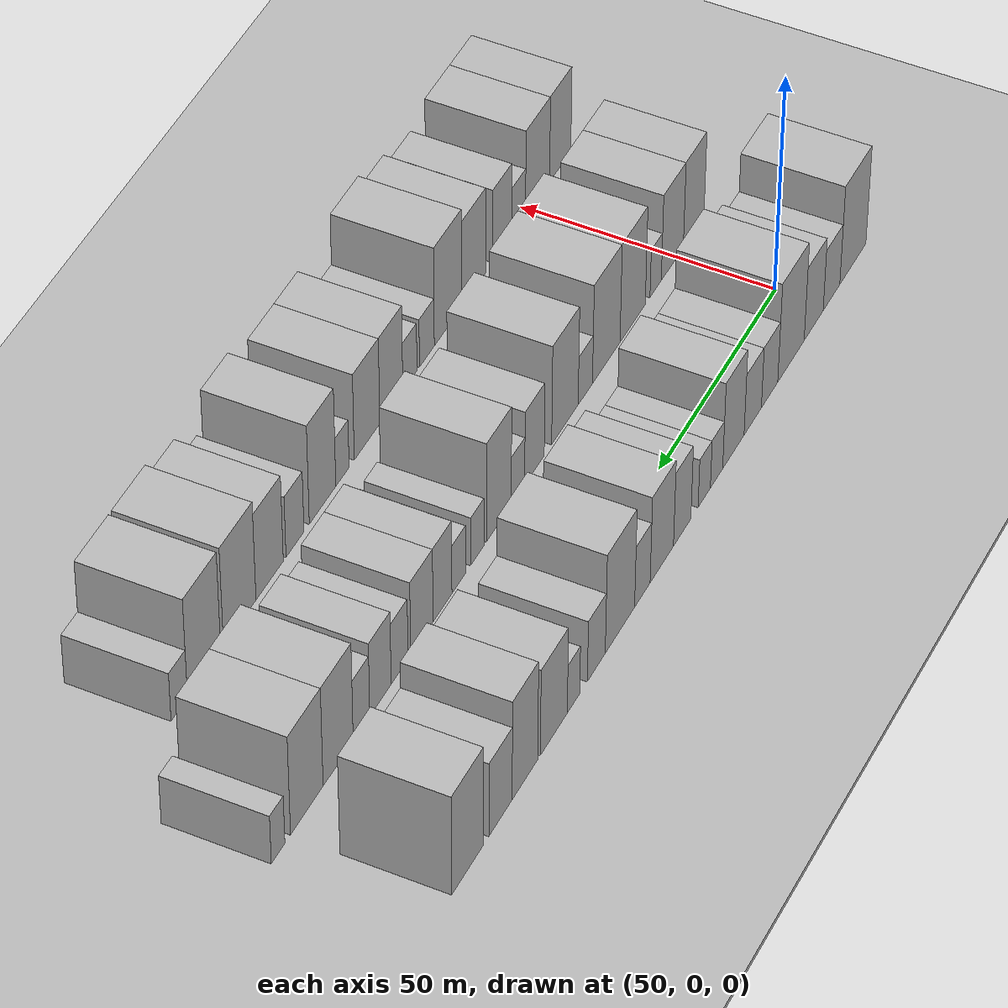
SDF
<sdf version="1.6">
 <world name="default">
  <include><name>ground_plane_1</name><uri>model://HANNAS_ground_plane</uri></include>
  <include>
   <name>ground_plane_2</name>
   <uri>model://HANNAS_ground_plane</uri>
   <pose>100 0 0  0 0 0</pose>
  </include>
  <model name="building_36">
   <static>1</static>
   <pose>50.0000 -11.4566 0 0.000000 0.000000 0.000000</pose>
   <link name="link">
    <pose>0 0 12.00 0 0 0</pose>
    <collision name="collision"><geometry><box><size>20.0000 11.8743 24.0000</size></box></geometry></collision>
    <visual name="visual">
     <cast_shadows>0</cast_shadows>
     <geometry><box><size>20.0000 11.8743 24.0000</size></box></geometry>
     <material>
      <script>
       <uri>model://HANNAS_wall/materials/scripts</uri>
       <uri>model://HANNAS_wall/materials/textures</uri>
       <name>vrc/HANNAS_wall</name>
      </script>
     </material>
    </visual>
   </link>
  </model>
  <model name="building_37">
   <static>1</static>
   <pose>50.0000 -1.7803 0 0.000000 0.000000 0.000000</pose>
   <link name="link">
    <pose>0 0 7.50 0 0 0</pose>
    <collision name="collision"><geometry><box><size>20.0000 7.4783 15.0000</size></box></geometry></collision>
    <visual name="visual">
     <cast_shadows>0</cast_shadows>
     <geometry><box><size>20.0000 7.4783 15.0000</size></box></geometry>
     <material>
      <script>
       <uri>model://HANNAS_wall/materials/scripts</uri>
       <uri>model://HANNAS_wall/materials/textures</uri>
       <name>vrc/HANNAS_wall</name>
      </script>
     </material>
    </visual>
   </link>
  </model>
  <model name="building_38">
   <static>1</static>
   <pose>50.0000 6.1895 0 0.000000 0.000000 0.000000</pose>
   <link name="link">
    <pose>0 0 9.00 0 0 0</pose>
    <collision name="collision"><geometry><box><size>20.0000 8.4613 18.0000</size></box></geometry></collision>
    <visual name="visual">
     <cast_shadows>0</cast_shadows>
     <geometry><box><size>20.0000 8.4613 18.0000</size></box></geometry>
     <material>
      <script>
       <uri>model://HANNAS_wall/materials/scripts</uri>
       <uri>model://HANNAS_wall/materials/textures</uri>
       <name>vrc/HANNAS_wall</name>
      </script>
     </material>
    </visual>
   </link>
  </model>
  <model name="building_39">
   <static>1</static>
   <pose>50.0000 16.2375 0 0.000000 0.000000 0.000000</pose>
   <link name="link">
    <pose>0 0 12.00 0 0 0</pose>
    <collision name="collision"><geometry><box><size>20.0000 11.6348 24.0000</size></box></geometry></collision>
    <visual name="visual">
     <cast_shadows>0</cast_shadows>
     <geometry><box><size>20.0000 11.6348 24.0000</size></box></geometry>
     <material>
      <script>
       <uri>model://HANNAS_wall/materials/scripts</uri>
       <uri>model://HANNAS_wall/materials/textures</uri>
       <name>vrc/HANNAS_wall</name>
      </script>
     </material>
    </visual>
   </link>
  </model>
  <model name="building_40">
   <static>1</static>
   <pose>50.0000 25.6012 0 0.000000 0.000000 0.000000</pose>
   <link name="link">
    <pose>0 0 7.50 0 0 0</pose>
    <collision name="collision"><geometry><box><size>20.0000 7.0926 15.0000</size></box></geometry></collision>
    <visual name="visual">
     <cast_shadows>0</cast_shadows>
     <geometry><box><size>20.0000 7.0926 15.0000</size></box></geometry>
     <material>
      <script>
       <uri>model://HANNAS_wall/materials/scripts</uri>
       <uri>model://HANNAS_wall/materials/textures</uri>
       <name>vrc/HANNAS_wall</name>
      </script>
     </material>
    </visual>
   </link>
  </model>
  <model name="building_41">
   <static>1</static>
   <pose>50.0000 32.8756 0 0.000000 0.000000 0.000000</pose>
   <link name="link">
    <pose>0 0 7.50 0 0 0</pose>
    <collision name="collision"><geometry><box><size>20.0000 7.4560 15.0000</size></box></geometry></collision>
    <visual name="visual">
     <cast_shadows>0</cast_shadows>
     <geometry><box><size>20.0000 7.4560 15.0000</size></box></geometry>
     <material>
      <script>
       <uri>model://HANNAS_wall/materials/scripts</uri>
       <uri>model://HANNAS_wall/materials/textures</uri>
       <name>vrc/HANNAS_wall</name>
      </script>
     </material>
    </visual>
   </link>
  </model>
  <model name="building_42">
   <static>1</static>
   <pose>50.0000 41.1588 0 0.000000 0.000000 0.000000</pose>
   <link name="link">
    <pose>0 0 10.50 0 0 0</pose>
    <collision name="collision"><geometry><box><size>20.0000 9.1105 21.0000</size></box></geometry></collision>
    <visual name="visual">
     <cast_shadows>0</cast_shadows>
     <geometry><box><size>20.0000 9.1105 21.0000</size></box></geometry>
     <material>
      <script>
       <uri>model://HANNAS_wall/materials/scripts</uri>
       <uri>model://HANNAS_wall/materials/textures</uri>
       <name>vrc/HANNAS_wall</name>
      </script>
     </material>
    </visual>
   </link>
  </model>
  <model name="building_43">
   <static>1</static>
   <pose>50.0000 48.3113 0 0.000000 0.000000 0.000000</pose>
   <link name="link">
    <pose>0 0 6.00 0 0 0</pose>
    <collision name="collision"><geometry><box><size>20.0000 5.1945 12.0000</size></box></geometry></collision>
    <visual name="visual">
     <cast_shadows>0</cast_shadows>
     <geometry><box><size>20.0000 5.1945 12.0000</size></box></geometry>
     <material>
      <script>
       <uri>model://HANNAS_wall/materials/scripts</uri>
       <uri>model://HANNAS_wall/materials/textures</uri>
       <name>vrc/HANNAS_wall</name>
      </script>
     </material>
    </visual>
   </link>
  </model>
  <model name="building_44">
   <static>1</static>
   <pose>50.0000 53.4789 0 0.000000 0.000000 0.000000</pose>
   <link name="link">
    <pose>0 0 6.00 0 0 0</pose>
    <collision name="collision"><geometry><box><size>20.0000 5.1407 12.0000</size></box></geometry></collision>
    <visual name="visual">
     <cast_shadows>0</cast_shadows>
     <geometry><box><size>20.0000 5.1407 12.0000</size></box></geometry>
     <material>
      <script>
       <uri>model://HANNAS_wall/materials/scripts</uri>
       <uri>model://HANNAS_wall/materials/textures</uri>
       <name>vrc/HANNAS_wall</name>
      </script>
     </material>
    </visual>
   </link>
  </model>
  <model name="building_45">
   <static>1</static>
   <pose>50.0000 62.6525 0 0.000000 0.000000 0.000000</pose>
   <link name="link">
    <pose>0 0 9.00 0 0 0</pose>
    <collision name="collision"><geometry><box><size>20.0000 7.2066 18.0000</size></box></geometry></collision>
    <visual name="visual">
     <cast_shadows>0</cast_shadows>
     <geometry><box><size>20.0000 7.2066 18.0000</size></box></geometry>
     <material>
      <script>
       <uri>model://HANNAS_wall/materials/scripts</uri>
       <uri>model://HANNAS_wall/materials/textures</uri>
       <name>vrc/HANNAS_wall</name>
      </script>
     </material>
    </visual>
   </link>
  </model>
  <model name="building_46">
   <static>1</static>
   <pose>50.0000 71.0401 0 0.000000 0.000000 0.000000</pose>
   <link name="link">
    <pose>0 0 10.50 0 0 0</pose>
    <collision name="collision"><geometry><box><size>20.0000 9.5687 21.0000</size></box></geometry></collision>
    <visual name="visual">
     <cast_shadows>0</cast_shadows>
     <geometry><box><size>20.0000 9.5687 21.0000</size></box></geometry>
     <material>
      <script>
       <uri>model://HANNAS_wall/materials/scripts</uri>
       <uri>model://HANNAS_wall/materials/textures</uri>
       <name>vrc/HANNAS_wall</name>
      </script>
     </material>
    </visual>
   </link>
  </model>
  <model name="building_47">
   <static>1</static>
   <pose>50.0000 78.9659 0 0.000000 0.000000 0.000000</pose>
   <link name="link">
    <pose>0 0 7.50 0 0 0</pose>
    <collision name="collision"><geometry><box><size>20.0000 6.2827 15.0000</size></box></geometry></collision>
    <visual name="visual">
     <cast_shadows>0</cast_shadows>
     <geometry><box><size>20.0000 6.2827 15.0000</size></box></geometry>
     <material>
      <script>
       <uri>model://HANNAS_wall/materials/scripts</uri>
       <uri>model://HANNAS_wall/materials/textures</uri>
       <name>vrc/HANNAS_wall</name>
      </script>
     </material>
    </visual>
   </link>
  </model>
  <model name="building_48">
   <static>1</static>
   <pose>50.0000 87.9736 0 0.000000 0.000000 0.000000</pose>
   <link name="link">
    <pose>0 0 12.00 0 0 0</pose>
    <collision name="collision"><geometry><box><size>20.0000 11.7327 24.0000</size></box></geometry></collision>
    <visual name="visual">
     <cast_shadows>0</cast_shadows>
     <geometry><box><size>20.0000 11.7327 24.0000</size></box></geometry>
     <material>
      <script>
       <uri>model://HANNAS_wall/materials/scripts</uri>
       <uri>model://HANNAS_wall/materials/textures</uri>
       <name>vrc/HANNAS_wall</name>
      </script>
     </material>
    </visual>
   </link>
  </model>
  <model name="building_49">
   <static>1</static>
   <pose>50.0000 97.3768 0 0.000000 0.000000 0.000000</pose>
   <link name="link">
    <pose>0 0 7.50 0 0 0</pose>
    <collision name="collision"><geometry><box><size>20.0000 7.0737 15.0000</size></box></geometry></collision>
    <visual name="visual">
     <cast_shadows>0</cast_shadows>
     <geometry><box><size>20.0000 7.0737 15.0000</size></box></geometry>
     <material>
      <script>
       <uri>model://HANNAS_wall/materials/scripts</uri>
       <uri>model://HANNAS_wall/materials/textures</uri>
       <name>vrc/HANNAS_wall</name>
      </script>
     </material>
    </visual>
   </link>
  </model>
  <model name="building_50">
   <static>1</static>
   <pose>50.0000 106.3409 0 0.000000 0.000000 0.000000</pose>
   <link name="link">
    <pose>0 0 6.00 0 0 0</pose>
    <collision name="collision"><geometry><box><size>20.0000 4.8545 12.0000</size></box></geometry></collision>
    <visual name="visual">
     <cast_shadows>0</cast_shadows>
     <geometry><box><size>20.0000 4.8545 12.0000</size></box></geometry>
     <material>
      <script>
       <uri>model://HANNAS_wall/materials/scripts</uri>
       <uri>model://HANNAS_wall/materials/textures</uri>
       <name>vrc/HANNAS_wall</name>
      </script>
     </material>
    </visual>
   </link>
  </model>
  <model name="building_51">
   <static>1</static>
   <pose>50.0000 113.9751 0 0.000000 0.000000 0.000000</pose>
   <link name="link">
    <pose>0 0 10.50 0 0 0</pose>
    <collision name="collision"><geometry><box><size>20.0000 10.4141 21.0000</size></box></geometry></collision>
    <visual name="visual">
     <cast_shadows>0</cast_shadows>
     <geometry><box><size>20.0000 10.4141 21.0000</size></box></geometry>
     <material>
      <script>
       <uri>model://HANNAS_wall/materials/scripts</uri>
       <uri>model://HANNAS_wall/materials/textures</uri>
       <name>vrc/HANNAS_wall</name>
      </script>
     </material>
    </visual>
   </link>
  </model>
  <model name="building_52">
   <static>1</static>
   <pose>50.0000 125.0453 0 0.000000 0.000000 0.000000</pose>
   <link name="link">
    <pose>0 0 12.00 0 0 0</pose>
    <collision name="collision"><geometry><box><size>20.0000 9.7262 24.0000</size></box></geometry></collision>
    <visual name="visual">
     <cast_shadows>0</cast_shadows>
     <geometry><box><size>20.0000 9.7262 24.0000</size></box></geometry>
     <material>
      <script>
       <uri>model://HANNAS_wall/materials/scripts</uri>
       <uri>model://HANNAS_wall/materials/textures</uri>
       <name>vrc/HANNAS_wall</name>
      </script>
     </material>
    </visual>
   </link>
  </model>
  <model name="building_53">
   <static>1</static>
   <pose>50.0000 134.2618 0 0.000000 0.000000 0.000000</pose>
   <link name="link">
    <pose>0 0 9.00 0 0 0</pose>
    <collision name="collision"><geometry><box><size>20.0000 8.7068 18.0000</size></box></geometry></collision>
    <visual name="visual">
     <cast_shadows>0</cast_shadows>
     <geometry><box><size>20.0000 8.7068 18.0000</size></box></geometry>
     <material>
      <script>
       <uri>model://HANNAS_wall/materials/scripts</uri>
       <uri>model://HANNAS_wall/materials/textures</uri>
       <name>vrc/HANNAS_wall</name>
      </script>
     </material>
    </visual>
   </link>
  </model>
  <model name="building_54">
   <static>1</static>
   <pose>50.0000 146.4818 0 0.000000 0.000000 0.000000</pose>
   <link name="link">
    <pose>0 0 12.00 0 0 0</pose>
    <collision name="collision"><geometry><box><size>20.0000 11.7331 24.0000</size></box></geometry></collision>
    <visual name="visual">
     <cast_shadows>0</cast_shadows>
     <geometry><box><size>20.0000 11.7331 24.0000</size></box></geometry>
     <material>
      <script>
       <uri>model://HANNAS_wall/materials/scripts</uri>
       <uri>model://HANNAS_wall/materials/textures</uri>
       <name>vrc/HANNAS_wall</name>
      </script>
     </material>
    </visual>
   </link>
  </model>
  <model name="building_113">
   <static>1</static>
   <pose>79.0000 -6.7796 0 0.000000 0.000000 0.000000</pose>
   <link name="link">
    <pose>0 0 10.50 0 0 0</pose>
    <collision name="collision"><geometry><box><size>20.0000 9.0145 21.0000</size></box></geometry></collision>
    <visual name="visual">
     <cast_shadows>0</cast_shadows>
     <geometry><box><size>20.0000 9.0145 21.0000</size></box></geometry>
     <material>
      <script>
       <uri>model://HANNAS_wall/materials/scripts</uri>
       <uri>model://HANNAS_wall/materials/textures</uri>
       <name>vrc/HANNAS_wall</name>
      </script>
     </material>
    </visual>
   </link>
  </model>
  <model name="building_114">
   <static>1</static>
   <pose>79.0000 2.4978 0 0.000000 0.000000 0.000000</pose>
   <link name="link">
    <pose>0 0 10.50 0 0 0</pose>
    <collision name="collision"><geometry><box><size>20.0000 9.5403 21.0000</size></box></geometry></collision>
    <visual name="visual">
     <cast_shadows>0</cast_shadows>
     <geometry><box><size>20.0000 9.5403 21.0000</size></box></geometry>
     <material>
      <script>
       <uri>model://HANNAS_wall/materials/scripts</uri>
       <uri>model://HANNAS_wall/materials/textures</uri>
       <name>vrc/HANNAS_wall</name>
      </script>
     </material>
    </visual>
   </link>
  </model>
  <model name="building_115">
   <static>1</static>
   <pose>79.0000 9.6954 0 0.000000 0.000000 0.000000</pose>
   <link name="link">
    <pose>0 0 6.00 0 0 0</pose>
    <collision name="collision"><geometry><box><size>20.0000 4.8549 12.0000</size></box></geometry></collision>
    <visual name="visual">
     <cast_shadows>0</cast_shadows>
     <geometry><box><size>20.0000 4.8549 12.0000</size></box></geometry>
     <material>
      <script>
       <uri>model://HANNAS_wall/materials/scripts</uri>
       <uri>model://HANNAS_wall/materials/textures</uri>
       <name>vrc/HANNAS_wall</name>
      </script>
     </material>
    </visual>
   </link>
  </model>
  <model name="building_116">
   <static>1</static>
   <pose>79.0000 19.4816 0 0.000000 0.000000 0.000000</pose>
   <link name="link">
    <pose>0 0 12.00 0 0 0</pose>
    <collision name="collision"><geometry><box><size>20.0000 10.7175 24.0000</size></box></geometry></collision>
    <visual name="visual">
     <cast_shadows>0</cast_shadows>
     <geometry><box><size>20.0000 10.7175 24.0000</size></box></geometry>
     <material>
      <script>
       <uri>model://HANNAS_wall/materials/scripts</uri>
       <uri>model://HANNAS_wall/materials/textures</uri>
       <name>vrc/HANNAS_wall</name>
      </script>
     </material>
    </visual>
   </link>
  </model>
  <model name="building_117">
   <static>1</static>
   <pose>79.0000 30.5939 0 0.000000 0.000000 0.000000</pose>
   <link name="link">
    <pose>0 0 12.00 0 0 0</pose>
    <collision name="collision"><geometry><box><size>20.0000 11.5070 24.0000</size></box></geometry></collision>
    <visual name="visual">
     <cast_shadows>0</cast_shadows>
     <geometry><box><size>20.0000 11.5070 24.0000</size></box></geometry>
     <material>
      <script>
       <uri>model://HANNAS_wall/materials/scripts</uri>
       <uri>model://HANNAS_wall/materials/textures</uri>
       <name>vrc/HANNAS_wall</name>
      </script>
     </material>
    </visual>
   </link>
  </model>
  <model name="building_118">
   <static>1</static>
   <pose>79.0000 39.3029 0 0.000000 0.000000 0.000000</pose>
   <link name="link">
    <pose>0 0 6.00 0 0 0</pose>
    <collision name="collision"><geometry><box><size>20.0000 5.9110 12.0000</size></box></geometry></collision>
    <visual name="visual">
     <cast_shadows>0</cast_shadows>
     <geometry><box><size>20.0000 5.9110 12.0000</size></box></geometry>
     <material>
      <script>
       <uri>model://HANNAS_wall/materials/scripts</uri>
       <uri>model://HANNAS_wall/materials/textures</uri>
       <name>vrc/HANNAS_wall</name>
      </script>
     </material>
    </visual>
   </link>
  </model>
  <model name="building_119">
   <static>1</static>
   <pose>79.0000 47.6782 0 0.000000 0.000000 0.000000</pose>
   <link name="link">
    <pose>0 0 12.00 0 0 0</pose>
    <collision name="collision"><geometry><box><size>20.0000 10.8397 24.0000</size></box></geometry></collision>
    <visual name="visual">
     <cast_shadows>0</cast_shadows>
     <geometry><box><size>20.0000 10.8397 24.0000</size></box></geometry>
     <material>
      <script>
       <uri>model://HANNAS_wall/materials/scripts</uri>
       <uri>model://HANNAS_wall/materials/textures</uri>
       <name>vrc/HANNAS_wall</name>
      </script>
     </material>
    </visual>
   </link>
  </model>
  <model name="building_120">
   <static>1</static>
   <pose>79.0000 60.0306 0 0.000000 0.000000 0.000000</pose>
   <link name="link">
    <pose>0 0 9.00 0 0 0</pose>
    <collision name="collision"><geometry><box><size>20.0000 7.8651 18.0000</size></box></geometry></collision>
    <visual name="visual">
     <cast_shadows>0</cast_shadows>
     <geometry><box><size>20.0000 7.8651 18.0000</size></box></geometry>
     <material>
      <script>
       <uri>model://HANNAS_wall/materials/scripts</uri>
       <uri>model://HANNAS_wall/materials/textures</uri>
       <name>vrc/HANNAS_wall</name>
      </script>
     </material>
    </visual>
   </link>
  </model>
  <model name="building_121">
   <static>1</static>
   <pose>79.0000 66.6410 0 0.000000 0.000000 0.000000</pose>
   <link name="link">
    <pose>0 0 6.00 0 0 0</pose>
    <collision name="collision"><geometry><box><size>20.0000 5.3556 12.0000</size></box></geometry></collision>
    <visual name="visual">
     <cast_shadows>0</cast_shadows>
     <geometry><box><size>20.0000 5.3556 12.0000</size></box></geometry>
     <material>
      <script>
       <uri>model://HANNAS_wall/materials/scripts</uri>
       <uri>model://HANNAS_wall/materials/textures</uri>
       <name>vrc/HANNAS_wall</name>
      </script>
     </material>
    </visual>
   </link>
  </model>
  <model name="building_122">
   <static>1</static>
   <pose>79.0000 74.1909 0 0.000000 0.000000 0.000000</pose>
   <link name="link">
    <pose>0 0 12.00 0 0 0</pose>
    <collision name="collision"><geometry><box><size>20.0000 9.7443 24.0000</size></box></geometry></collision>
    <visual name="visual">
     <cast_shadows>0</cast_shadows>
     <geometry><box><size>20.0000 9.7443 24.0000</size></box></geometry>
     <material>
      <script>
       <uri>model://HANNAS_wall/materials/scripts</uri>
       <uri>model://HANNAS_wall/materials/textures</uri>
       <name>vrc/HANNAS_wall</name>
      </script>
     </material>
    </visual>
   </link>
  </model>
  <model name="building_123">
   <static>1</static>
   <pose>79.0000 82.6340 0 0.000000 0.000000 0.000000</pose>
   <link name="link">
    <pose>0 0 6.00 0 0 0</pose>
    <collision name="collision"><geometry><box><size>20.0000 5.1418 12.0000</size></box></geometry></collision>
    <visual name="visual">
     <cast_shadows>0</cast_shadows>
     <geometry><box><size>20.0000 5.1418 12.0000</size></box></geometry>
     <material>
      <script>
       <uri>model://HANNAS_wall/materials/scripts</uri>
       <uri>model://HANNAS_wall/materials/textures</uri>
       <name>vrc/HANNAS_wall</name>
      </script>
     </material>
    </visual>
   </link>
  </model>
  <model name="building_124">
   <static>1</static>
   <pose>79.0000 89.8592 0 0.000000 0.000000 0.000000</pose>
   <link name="link">
    <pose>0 0 6.00 0 0 0</pose>
    <collision name="collision"><geometry><box><size>20.0000 5.3085 12.0000</size></box></geometry></collision>
    <visual name="visual">
     <cast_shadows>0</cast_shadows>
     <geometry><box><size>20.0000 5.3085 12.0000</size></box></geometry>
     <material>
      <script>
       <uri>model://HANNAS_wall/materials/scripts</uri>
       <uri>model://HANNAS_wall/materials/textures</uri>
       <name>vrc/HANNAS_wall</name>
      </script>
     </material>
    </visual>
   </link>
  </model>
  <model name="building_125">
   <static>1</static>
   <pose>79.0000 96.1387 0 0.000000 0.000000 0.000000</pose>
   <link name="link">
    <pose>0 0 9.00 0 0 0</pose>
    <collision name="collision"><geometry><box><size>20.0000 7.2506 18.0000</size></box></geometry></collision>
    <visual name="visual">
     <cast_shadows>0</cast_shadows>
     <geometry><box><size>20.0000 7.2506 18.0000</size></box></geometry>
     <material>
      <script>
       <uri>model://HANNAS_wall/materials/scripts</uri>
       <uri>model://HANNAS_wall/materials/textures</uri>
       <name>vrc/HANNAS_wall</name>
      </script>
     </material>
    </visual>
   </link>
  </model>
  <model name="building_126">
   <static>1</static>
   <pose>79.0000 104.0138 0 0.000000 0.000000 0.000000</pose>
   <link name="link">
    <pose>0 0 9.00 0 0 0</pose>
    <collision name="collision"><geometry><box><size>20.0000 8.4997 18.0000</size></box></geometry></collision>
    <visual name="visual">
     <cast_shadows>0</cast_shadows>
     <geometry><box><size>20.0000 8.4997 18.0000</size></box></geometry>
     <material>
      <script>
       <uri>model://HANNAS_wall/materials/scripts</uri>
       <uri>model://HANNAS_wall/materials/textures</uri>
       <name>vrc/HANNAS_wall</name>
      </script>
     </material>
    </visual>
   </link>
  </model>
  <model name="building_127">
   <static>1</static>
   <pose>79.0000 112.4171 0 0.000000 0.000000 0.000000</pose>
   <link name="link">
    <pose>0 0 7.50 0 0 0</pose>
    <collision name="collision"><geometry><box><size>20.0000 6.3067 15.0000</size></box></geometry></collision>
    <visual name="visual">
     <cast_shadows>0</cast_shadows>
     <geometry><box><size>20.0000 6.3067 15.0000</size></box></geometry>
     <material>
      <script>
       <uri>model://HANNAS_wall/materials/scripts</uri>
       <uri>model://HANNAS_wall/materials/textures</uri>
       <name>vrc/HANNAS_wall</name>
      </script>
     </material>
    </visual>
   </link>
  </model>
  <model name="building_128">
   <static>1</static>
   <pose>79.0000 119.5360 0 0.000000 0.000000 0.000000</pose>
   <link name="link">
    <pose>0 0 9.00 0 0 0</pose>
    <collision name="collision"><geometry><box><size>20.0000 7.9312 18.0000</size></box></geometry></collision>
    <visual name="visual">
     <cast_shadows>0</cast_shadows>
     <geometry><box><size>20.0000 7.9312 18.0000</size></box></geometry>
     <material>
      <script>
       <uri>model://HANNAS_wall/materials/scripts</uri>
       <uri>model://HANNAS_wall/materials/textures</uri>
       <name>vrc/HANNAS_wall</name>
      </script>
     </material>
    </visual>
   </link>
  </model>
  <model name="building_129">
   <static>1</static>
   <pose>79.0000 126.5521 0 0.000000 0.000000 0.000000</pose>
   <link name="link">
    <pose>0 0 7.50 0 0 0</pose>
    <collision name="collision"><geometry><box><size>20.0000 6.1010 15.0000</size></box></geometry></collision>
    <visual name="visual">
     <cast_shadows>0</cast_shadows>
     <geometry><box><size>20.0000 6.1010 15.0000</size></box></geometry>
     <material>
      <script>
       <uri>model://HANNAS_wall/materials/scripts</uri>
       <uri>model://HANNAS_wall/materials/textures</uri>
       <name>vrc/HANNAS_wall</name>
      </script>
     </material>
    </visual>
   </link>
  </model>
  <model name="building_130">
   <static>1</static>
   <pose>79.0000 135.0654 0 0.000000 0.000000 0.000000</pose>
   <link name="link">
    <pose>0 0 12.00 0 0 0</pose>
    <collision name="collision"><geometry><box><size>20.0000 10.9256 24.0000</size></box></geometry></collision>
    <visual name="visual">
     <cast_shadows>0</cast_shadows>
     <geometry><box><size>20.0000 10.9256 24.0000</size></box></geometry>
     <material>
      <script>
       <uri>model://HANNAS_wall/materials/scripts</uri>
       <uri>model://HANNAS_wall/materials/textures</uri>
       <name>vrc/HANNAS_wall</name>
      </script>
     </material>
    </visual>
   </link>
  </model>
  <model name="building_131">
   <static>1</static>
   <pose>79.0000 146.3629 0 0.000000 0.000000 0.000000</pose>
   <link name="link">
    <pose>0 0 12.00 0 0 0</pose>
    <collision name="collision"><geometry><box><size>20.0000 11.6694 24.0000</size></box></geometry></collision>
    <visual name="visual">
     <cast_shadows>0</cast_shadows>
     <geometry><box><size>20.0000 11.6694 24.0000</size></box></geometry>
     <material>
      <script>
       <uri>model://HANNAS_wall/materials/scripts</uri>
       <uri>model://HANNAS_wall/materials/textures</uri>
       <name>vrc/HANNAS_wall</name>
      </script>
     </material>
    </visual>
   </link>
  </model>
  <model name="building_132">
   <static>1</static>
   <pose>79.0000 156.5981 0 0.000000 0.000000 0.000000</pose>
   <link name="link">
    <pose>0 0 6.00 0 0 0</pose>
    <collision name="collision"><geometry><box><size>20.0000 4.8011 12.0000</size></box></geometry></collision>
    <visual name="visual">
     <cast_shadows>0</cast_shadows>
     <geometry><box><size>20.0000 4.8011 12.0000</size></box></geometry>
     <material>
      <script>
       <uri>model://HANNAS_wall/materials/scripts</uri>
       <uri>model://HANNAS_wall/materials/textures</uri>
       <name>vrc/HANNAS_wall</name>
      </script>
     </material>
    </visual>
   </link>
  </model>
  <model name="building_191">
   <static>1</static>
   <pose>108.0000 -12.3022 0 0.000000 0.000000 0.000000</pose>
   <link name="link">
    <pose>0 0 10.50 0 0 0</pose>
    <collision name="collision"><geometry><box><size>20.0000 9.0557 21.0000</size></box></geometry></collision>
    <visual name="visual">
     <cast_shadows>0</cast_shadows>
     <geometry><box><size>20.0000 9.0557 21.0000</size></box></geometry>
     <material>
      <script>
       <uri>model://HANNAS_wall/materials/scripts</uri>
       <uri>model://HANNAS_wall/materials/textures</uri>
       <name>vrc/HANNAS_wall</name>
      </script>
     </material>
    </visual>
   </link>
  </model>
  <model name="building_192">
   <static>1</static>
   <pose>108.0000 -2.6810 0 0.000000 0.000000 0.000000</pose>
   <link name="link">
    <pose>0 0 10.50 0 0 0</pose>
    <collision name="collision"><geometry><box><size>20.0000 10.1867 21.0000</size></box></geometry></collision>
    <visual name="visual">
     <cast_shadows>0</cast_shadows>
     <geometry><box><size>20.0000 10.1867 21.0000</size></box></geometry>
     <material>
      <script>
       <uri>model://HANNAS_wall/materials/scripts</uri>
       <uri>model://HANNAS_wall/materials/textures</uri>
       <name>vrc/HANNAS_wall</name>
      </script>
     </material>
    </visual>
   </link>
  </model>
  <model name="building_193">
   <static>1</static>
   <pose>108.0000 5.3242 0 0.000000 0.000000 0.000000</pose>
   <link name="link">
    <pose>0 0 6.00 0 0 0</pose>
    <collision name="collision"><geometry><box><size>20.0000 5.8237 12.0000</size></box></geometry></collision>
    <visual name="visual">
     <cast_shadows>0</cast_shadows>
     <geometry><box><size>20.0000 5.8237 12.0000</size></box></geometry>
     <material>
      <script>
       <uri>model://HANNAS_wall/materials/scripts</uri>
       <uri>model://HANNAS_wall/materials/textures</uri>
       <name>vrc/HANNAS_wall</name>
      </script>
     </material>
    </visual>
   </link>
  </model>
  <model name="building_194">
   <static>1</static>
   <pose>108.0000 12.1170 0 0.000000 0.000000 0.000000</pose>
   <link name="link">
    <pose>0 0 9.00 0 0 0</pose>
    <collision name="collision"><geometry><box><size>20.0000 7.7619 18.0000</size></box></geometry></collision>
    <visual name="visual">
     <cast_shadows>0</cast_shadows>
     <geometry><box><size>20.0000 7.7619 18.0000</size></box></geometry>
     <material>
      <script>
       <uri>model://HANNAS_wall/materials/scripts</uri>
       <uri>model://HANNAS_wall/materials/textures</uri>
       <name>vrc/HANNAS_wall</name>
      </script>
     </material>
    </visual>
   </link>
  </model>
  <model name="building_195">
   <static>1</static>
   <pose>108.0000 23.9061 0 0.000000 0.000000 0.000000</pose>
   <link name="link">
    <pose>0 0 10.50 0 0 0</pose>
    <collision name="collision"><geometry><box><size>20.0000 9.8163 21.0000</size></box></geometry></collision>
    <visual name="visual">
     <cast_shadows>0</cast_shadows>
     <geometry><box><size>20.0000 9.8163 21.0000</size></box></geometry>
     <material>
      <script>
       <uri>model://HANNAS_wall/materials/scripts</uri>
       <uri>model://HANNAS_wall/materials/textures</uri>
       <name>vrc/HANNAS_wall</name>
      </script>
     </material>
    </visual>
   </link>
  </model>
  <model name="building_196">
   <static>1</static>
   <pose>108.0000 34.3133 0 0.000000 0.000000 0.000000</pose>
   <link name="link">
    <pose>0 0 12.00 0 0 0</pose>
    <collision name="collision"><geometry><box><size>20.0000 10.9981 24.0000</size></box></geometry></collision>
    <visual name="visual">
     <cast_shadows>0</cast_shadows>
     <geometry><box><size>20.0000 10.9981 24.0000</size></box></geometry>
     <material>
      <script>
       <uri>model://HANNAS_wall/materials/scripts</uri>
       <uri>model://HANNAS_wall/materials/textures</uri>
       <name>vrc/HANNAS_wall</name>
      </script>
     </material>
    </visual>
   </link>
  </model>
  <model name="building_197">
   <static>1</static>
   <pose>108.0000 42.7791 0 0.000000 0.000000 0.000000</pose>
   <link name="link">
    <pose>0 0 6.00 0 0 0</pose>
    <collision name="collision"><geometry><box><size>20.0000 5.9335 12.0000</size></box></geometry></collision>
    <visual name="visual">
     <cast_shadows>0</cast_shadows>
     <geometry><box><size>20.0000 5.9335 12.0000</size></box></geometry>
     <material>
      <script>
       <uri>model://HANNAS_wall/materials/scripts</uri>
       <uri>model://HANNAS_wall/materials/textures</uri>
       <name>vrc/HANNAS_wall</name>
      </script>
     </material>
    </visual>
   </link>
  </model>
  <model name="building_198">
   <static>1</static>
   <pose>108.0000 49.5528 0 0.000000 0.000000 0.000000</pose>
   <link name="link">
    <pose>0 0 6.00 0 0 0</pose>
    <collision name="collision"><geometry><box><size>20.0000 5.6137 12.0000</size></box></geometry></collision>
    <visual name="visual">
     <cast_shadows>0</cast_shadows>
     <geometry><box><size>20.0000 5.6137 12.0000</size></box></geometry>
     <material>
      <script>
       <uri>model://HANNAS_wall/materials/scripts</uri>
       <uri>model://HANNAS_wall/materials/textures</uri>
       <name>vrc/HANNAS_wall</name>
      </script>
     </material>
    </visual>
   </link>
  </model>
  <model name="building_199">
   <static>1</static>
   <pose>108.0000 56.8546 0 0.000000 0.000000 0.000000</pose>
   <link name="link">
    <pose>0 0 10.50 0 0 0</pose>
    <collision name="collision"><geometry><box><size>20.0000 8.9900 21.0000</size></box></geometry></collision>
    <visual name="visual">
     <cast_shadows>0</cast_shadows>
     <geometry><box><size>20.0000 8.9900 21.0000</size></box></geometry>
     <material>
      <script>
       <uri>model://HANNAS_wall/materials/scripts</uri>
       <uri>model://HANNAS_wall/materials/textures</uri>
       <name>vrc/HANNAS_wall</name>
      </script>
     </material>
    </visual>
   </link>
  </model>
  <model name="building_200">
   <static>1</static>
   <pose>108.0000 66.2915 0 0.000000 0.000000 0.000000</pose>
   <link name="link">
    <pose>0 0 10.50 0 0 0</pose>
    <collision name="collision"><geometry><box><size>20.0000 9.8838 21.0000</size></box></geometry></collision>
    <visual name="visual">
     <cast_shadows>0</cast_shadows>
     <geometry><box><size>20.0000 9.8838 21.0000</size></box></geometry>
     <material>
      <script>
       <uri>model://HANNAS_wall/materials/scripts</uri>
       <uri>model://HANNAS_wall/materials/textures</uri>
       <name>vrc/HANNAS_wall</name>
      </script>
     </material>
    </visual>
   </link>
  </model>
  <model name="building_201">
   <static>1</static>
   <pose>108.0000 75.7682 0 0.000000 0.000000 0.000000</pose>
   <link name="link">
    <pose>0 0 6.00 0 0 0</pose>
    <collision name="collision"><geometry><box><size>20.0000 5.0695 12.0000</size></box></geometry></collision>
    <visual name="visual">
     <cast_shadows>0</cast_shadows>
     <geometry><box><size>20.0000 5.0695 12.0000</size></box></geometry>
     <material>
      <script>
       <uri>model://HANNAS_wall/materials/scripts</uri>
       <uri>model://HANNAS_wall/materials/textures</uri>
       <name>vrc/HANNAS_wall</name>
      </script>
     </material>
    </visual>
   </link>
  </model>
  <model name="building_202">
   <static>1</static>
   <pose>108.0000 83.3151 0 0.000000 0.000000 0.000000</pose>
   <link name="link">
    <pose>0 0 12.00 0 0 0</pose>
    <collision name="collision"><geometry><box><size>20.0000 10.0242 24.0000</size></box></geometry></collision>
    <visual name="visual">
     <cast_shadows>0</cast_shadows>
     <geometry><box><size>20.0000 10.0242 24.0000</size></box></geometry>
     <material>
      <script>
       <uri>model://HANNAS_wall/materials/scripts</uri>
       <uri>model://HANNAS_wall/materials/textures</uri>
       <name>vrc/HANNAS_wall</name>
      </script>
     </material>
    </visual>
   </link>
  </model>
  <model name="building_203">
   <static>1</static>
   <pose>108.0000 93.6854 0 0.000000 0.000000 0.000000</pose>
   <link name="link">
    <pose>0 0 7.50 0 0 0</pose>
    <collision name="collision"><geometry><box><size>20.0000 6.7164 15.0000</size></box></geometry></collision>
    <visual name="visual">
     <cast_shadows>0</cast_shadows>
     <geometry><box><size>20.0000 6.7164 15.0000</size></box></geometry>
     <material>
      <script>
       <uri>model://HANNAS_wall/materials/scripts</uri>
       <uri>model://HANNAS_wall/materials/textures</uri>
       <name>vrc/HANNAS_wall</name>
      </script>
     </material>
    </visual>
   </link>
  </model>
  <model name="building_204">
   <static>1</static>
   <pose>108.0000 103.0812 0 0.000000 0.000000 0.000000</pose>
   <link name="link">
    <pose>0 0 10.50 0 0 0</pose>
    <collision name="collision"><geometry><box><size>20.0000 10.0752 21.0000</size></box></geometry></collision>
    <visual name="visual">
     <cast_shadows>0</cast_shadows>
     <geometry><box><size>20.0000 10.0752 21.0000</size></box></geometry>
     <material>
      <script>
       <uri>model://HANNAS_wall/materials/scripts</uri>
       <uri>model://HANNAS_wall/materials/textures</uri>
       <name>vrc/HANNAS_wall</name>
      </script>
     </material>
    </visual>
   </link>
  </model>
  <model name="building_205">
   <static>1</static>
   <pose>108.0000 114.0184 0 0.000000 0.000000 0.000000</pose>
   <link name="link">
    <pose>0 0 12.00 0 0 0</pose>
    <collision name="collision"><geometry><box><size>20.0000 11.7993 24.0000</size></box></geometry></collision>
    <visual name="visual">
     <cast_shadows>0</cast_shadows>
     <geometry><box><size>20.0000 11.7993 24.0000</size></box></geometry>
     <material>
      <script>
       <uri>model://HANNAS_wall/materials/scripts</uri>
       <uri>model://HANNAS_wall/materials/textures</uri>
       <name>vrc/HANNAS_wall</name>
      </script>
     </material>
    </visual>
   </link>
  </model>
  <model name="building_206">
   <static>1</static>
   <pose>108.0000 126.8503 0 0.000000 0.000000 0.000000</pose>
   <link name="link">
    <pose>0 0 12.00 0 0 0</pose>
    <collision name="collision"><geometry><box><size>20.0000 11.8644 24.0000</size></box></geometry></collision>
    <visual name="visual">
     <cast_shadows>0</cast_shadows>
     <geometry><box><size>20.0000 11.8644 24.0000</size></box></geometry>
     <material>
      <script>
       <uri>model://HANNAS_wall/materials/scripts</uri>
       <uri>model://HANNAS_wall/materials/textures</uri>
       <name>vrc/HANNAS_wall</name>
      </script>
     </material>
    </visual>
   </link>
  </model>
  <model name="building_207">
   <static>1</static>
   <pose>108.0000 135.6862 0 0.000000 0.000000 0.000000</pose>
   <link name="link">
    <pose>0 0 6.00 0 0 0</pose>
    <collision name="collision"><geometry><box><size>20.0000 5.8075 12.0000</size></box></geometry></collision>
    <visual name="visual">
     <cast_shadows>0</cast_shadows>
     <geometry><box><size>20.0000 5.8075 12.0000</size></box></geometry>
     <material>
      <script>
       <uri>model://HANNAS_wall/materials/scripts</uri>
       <uri>model://HANNAS_wall/materials/textures</uri>
       <name>vrc/HANNAS_wall</name>
      </script>
     </material>
    </visual>
   </link>
  </model>
 </world>
</sdf>
